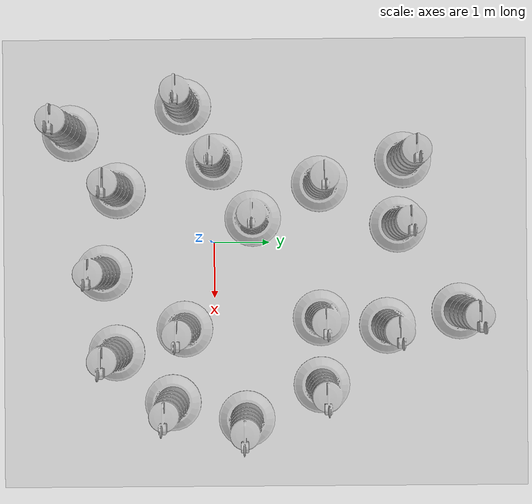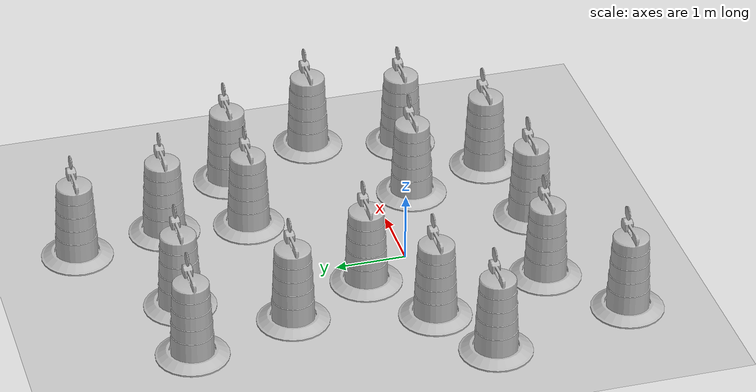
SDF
<sdf version="1.7">
 <world name="default">
  <light name="sun" type="directional">
   <pose>0 0 10 0 -0 0</pose>
   <diffuse>0.8 0.8 0.8 1</diffuse>
   <specular>0.2 0.2 0.2 1</specular>
   <attenuation>
    <range>1000</range>
    <constant>0.9</constant>
    <linear>0.01</linear>
    <quadratic>0.001</quadratic>
   </attenuation>
   <direction>-0.5 0.1 -0.9</direction>
   <spot><inner_angle>0</inner_angle><outer_angle>0</outer_angle><falloff>0</falloff></spot>
  </light>
  <model name="ground_plane">
   <static>1</static>
   <link name="link">
    <collision name="collision">
     <geometry><plane><normal>0 0 1</normal><size>100 100</size></plane></geometry>
     <surface>
      <contact><collide_bitmask>65535</collide_bitmask></contact>
      <friction><ode><mu>100</mu><mu2>50</mu2></ode></friction>
     </surface>
    </collision>
    <visual name="visual">
     <cast_shadows>0</cast_shadows>
     <geometry><plane><normal>0 0 1</normal><size>100 100</size></plane></geometry>
     <material>
      <script><uri>file://media/materials/scripts/gazebo.material</uri><name>Gazebo/Grey</name></script>
     </material>
    </visual>
   </link>
  </model>
  <gravity>0 0 -9.8</gravity>
  <magnetic_field>6e-06 2.3e-05 -4.2e-05</magnetic_field>
  <atmosphere type="adiabatic"/>
  <physics type="ode">
   <max_step_size>0.001</max_step_size>
   <real_time_factor>1</real_time_factor>
   <real_time_update_rate>1000</real_time_update_rate>
  </physics>
  <scene><ambient>0.4 0.4 0.4 1</ambient><background>0.7 0.7 0.7 1</background><shadows>1</shadows></scene>
  <audio><device>default</device></audio>
  <spherical_coordinates>
   <surface_model>EARTH_WGS84</surface_model>
   <latitude_deg>0</latitude_deg>
   <longitude_deg>0</longitude_deg>
   <elevation>0</elevation>
   <heading_deg>0</heading_deg>
  </spherical_coordinates>
  <model name="Construction Barrel">
   <link name="link">
    <inertial>
     <pose>0 0 0.4 0 -0 0</pose>
     <mass>500</mass>
     <inertia><ixx>51.2096</ixx><iyy>51.2096</iyy><izz>25</izz><ixy>0</ixy><ixz>0</ixz><iyz>0</iyz></inertia>
    </inertial>
    <collision name="collision">
     <geometry><mesh><uri>model://construction_barrel/meshes/construction_barrel.dae</uri></mesh></geometry>
    </collision>
    <visual name="visual">
     <geometry><mesh><uri>model://construction_barrel/meshes/construction_barrel.dae</uri></mesh></geometry>
    </visual>
   </link>
   <pose>-1.05787 1.90307 -5e-06 -9e-06 -9e-06 -1.3e-05</pose>
  </model>
  <model name="Construction Barrel_0">
   <link name="link">
    <inertial>
     <pose>0 0 0.4 0 -0 0</pose>
     <mass>500</mass>
     <inertia><ixx>51.2096</ixx><iyy>51.2096</iyy><izz>25</izz><ixy>0</ixy><ixz>0</ixz><iyz>0</iyz></inertia>
    </inertial>
    <collision name="collision">
     <geometry><mesh><uri>model://construction_barrel/meshes/construction_barrel.dae</uri></mesh></geometry>
    </collision>
    <visual name="visual">
     <geometry><mesh><uri>model://construction_barrel/meshes/construction_barrel.dae</uri></mesh></geometry>
    </visual>
   </link>
   <pose>2.58037 1.9282 -1e-06 0 5e-06 -1e-05</pose>
  </model>
  <model name="Construction Barrel_0_clone">
   <link name="link">
    <inertial>
     <pose>0 0 0.4 0 -0 0</pose>
     <mass>500</mass>
     <inertia><ixx>51.2096</ixx><iyy>51.2096</iyy><izz>25</izz><ixy>0</ixy><ixz>0</ixz><iyz>0</iyz></inertia>
    </inertial>
    <collision name="collision">
     <geometry><mesh><uri>model://construction_barrel/meshes/construction_barrel.dae</uri></mesh></geometry>
    </collision>
    <visual name="visual">
     <geometry><mesh><uri>model://construction_barrel/meshes/construction_barrel.dae</uri></mesh></geometry>
    </visual>
   </link>
   <pose>1.51451 3.12122 -4e-06 -5e-06 -7e-06 -9e-06</pose>
  </model>
  <model name="Construction Barrel_clone">
   <link name="link">
    <inertial>
     <pose>0 0 0.4 0 -0 0</pose>
     <mass>500</mass>
     <inertia><ixx>51.2096</ixx><iyy>51.2096</iyy><izz>25</izz><ixy>0</ixy><ixz>0</ixz><iyz>0</iyz></inertia>
    </inertial>
    <collision name="collision">
     <geometry><mesh><uri>model://construction_barrel/meshes/construction_barrel.dae</uri></mesh></geometry>
    </collision>
    <visual name="visual">
     <geometry><mesh><uri>model://construction_barrel/meshes/construction_barrel.dae</uri></mesh></geometry>
    </visual>
   </link>
   <pose>-1.48114 3.4154 0 2e-06 0 -1.3e-05</pose>
  </model>
  <model name="Construction Barrel_clone_0">
   <link name="link">
    <inertial>
     <pose>0 0 0.4 0 -0 0</pose>
     <mass>500</mass>
     <inertia><ixx>51.2096</ixx><iyy>51.2096</iyy><izz>25</izz><ixy>0</ixy><ixz>0</ixz><iyz>0</iyz></inertia>
    </inertial>
    <collision name="collision">
     <geometry><mesh><uri>model://construction_barrel/meshes/construction_barrel.dae</uri></mesh></geometry>
    </collision>
    <visual name="visual">
     <geometry><mesh><uri>model://construction_barrel/meshes/construction_barrel.dae</uri></mesh></geometry>
    </visual>
   </link>
   <pose>1.26058 4.43289 0 2e-06 0 -1.3e-05</pose>
  </model>
  <model name="Construction Barrel_clone_1">
   <link name="link">
    <inertial>
     <pose>0 0 0.4 0 -0 0</pose>
     <mass>500</mass>
     <inertia><ixx>51.2096</ixx><iyy>51.2096</iyy><izz>25</izz><ixy>0</ixy><ixz>0</ixz><iyz>0</iyz></inertia>
    </inertial>
    <collision name="collision">
     <geometry><mesh><uri>model://construction_barrel/meshes/construction_barrel.dae</uri></mesh></geometry>
    </collision>
    <visual name="visual">
     <geometry><mesh><uri>model://construction_barrel/meshes/construction_barrel.dae</uri></mesh></geometry>
    </visual>
   </link>
   <pose>-0.438868 0.694605 0 2e-06 0 -1.3e-05</pose>
  </model>
  <model name="Construction Barrel_clone_2">
   <link name="link">
    <inertial>
     <pose>0 0 0.4 0 -0 0</pose>
     <mass>500</mass>
     <inertia><ixx>51.2096</ixx><iyy>51.2096</iyy><izz>25</izz><ixy>0</ixy><ixz>0</ixz><iyz>0</iyz></inertia>
    </inertial>
    <collision name="collision">
     <geometry><mesh><uri>model://construction_barrel/meshes/construction_barrel.dae</uri></mesh></geometry>
    </collision>
    <visual name="visual">
     <geometry><mesh><uri>model://construction_barrel/meshes/construction_barrel.dae</uri></mesh></geometry>
    </visual>
   </link>
   <pose>3.18721 0.569614 0 2e-06 0 -1.3e-05</pose>
  </model>
  <model name="Construction Barrel_clone_3">
   <link name="link">
    <inertial>
     <pose>0 0 0.4 0 -0 0</pose>
     <mass>500</mass>
     <inertia><ixx>51.2096</ixx><iyy>51.2096</iyy><izz>25</izz><ixy>0</ixy><ixz>0</ixz><iyz>0</iyz></inertia>
    </inertial>
    <collision name="collision">
     <geometry><mesh><uri>model://construction_barrel/meshes/construction_barrel.dae</uri></mesh></geometry>
    </collision>
    <visual name="visual">
     <geometry><mesh><uri>model://construction_barrel/meshes/construction_barrel.dae</uri></mesh></geometry>
    </visual>
   </link>
   <pose>2.88599 -0.764902 0 2e-06 0 -1.3e-05</pose>
  </model>
  <model name="Construction Barrel_clone_4">
   <link name="link">
    <inertial>
     <pose>0 0 0.4 0 -0 0</pose>
     <mass>500</mass>
     <inertia><ixx>51.2096</ixx><iyy>51.2096</iyy><izz>25</izz><ixy>0</ixy><ixz>0</ixz><iyz>0</iyz></inertia>
    </inertial>
    <collision name="collision">
     <geometry><mesh><uri>model://construction_barrel/meshes/construction_barrel.dae</uri></mesh></geometry>
    </collision>
    <visual name="visual">
     <geometry><mesh><uri>model://construction_barrel/meshes/construction_barrel.dae</uri></mesh></geometry>
    </visual>
   </link>
   <pose>1.97864 -1.77925 0 2e-06 0 -1.3e-05</pose>
  </model>
  <model name="Construction Barrel_clone_5">
   <link name="link">
    <inertial>
     <pose>0 0 0.4 0 -0 0</pose>
     <mass>500</mass>
     <inertia><ixx>51.2096</ixx><iyy>51.2096</iyy><izz>25</izz><ixy>0</ixy><ixz>0</ixz><iyz>0</iyz></inertia>
    </inertial>
    <collision name="collision">
     <geometry><mesh><uri>model://construction_barrel/meshes/construction_barrel.dae</uri></mesh></geometry>
    </collision>
    <visual name="visual">
     <geometry><mesh><uri>model://construction_barrel/meshes/construction_barrel.dae</uri></mesh></geometry>
    </visual>
   </link>
   <pose>0.534675 -2 0 2e-06 0 -1.3e-05</pose>
  </model>
  <model name="Construction Barrel_clone_6">
   <link name="link">
    <inertial>
     <pose>0 0 0.4 0 -0 0</pose>
     <mass>500</mass>
     <inertia><ixx>51.2096</ixx><iyy>51.2096</iyy><izz>25</izz><ixy>0</ixy><ixz>0</ixz><iyz>0</iyz></inertia>
    </inertial>
    <collision name="collision">
     <geometry><mesh><uri>model://construction_barrel/meshes/construction_barrel.dae</uri></mesh></geometry>
    </collision>
    <visual name="visual">
     <geometry><mesh><uri>model://construction_barrel/meshes/construction_barrel.dae</uri></mesh></geometry>
    </visual>
   </link>
   <pose>-0.957001 -1.75137 0 2e-06 0 -1.3e-05</pose>
  </model>
  <model name="Construction Barrel_clone_7">
   <link name="link">
    <inertial>
     <pose>0 0 0.4 0 -0 0</pose>
     <mass>500</mass>
     <inertia><ixx>51.2096</ixx><iyy>51.2096</iyy><izz>25</izz><ixy>0</ixy><ixz>0</ixz><iyz>0</iyz></inertia>
    </inertial>
    <collision name="collision">
     <geometry><mesh><uri>model://construction_barrel/meshes/construction_barrel.dae</uri></mesh></geometry>
    </collision>
    <visual name="visual">
     <geometry><mesh><uri>model://construction_barrel/meshes/construction_barrel.dae</uri></mesh></geometry>
    </visual>
   </link>
   <pose>1.36858 1.92163 0 2e-06 0 -1.3e-05</pose>
  </model>
  <model name="Construction Barrel_clone_8">
   <link name="link">
    <inertial>
     <pose>0 0 0.4 0 -0 0</pose>
     <mass>500</mass>
     <inertia><ixx>51.2096</ixx><iyy>51.2096</iyy><izz>25</izz><ixy>0</ixy><ixz>0</ixz><iyz>0</iyz></inertia>
    </inertial>
    <collision name="collision">
     <geometry><mesh><uri>model://construction_barrel/meshes/construction_barrel.dae</uri></mesh></geometry>
    </collision>
    <visual name="visual">
     <geometry><mesh><uri>model://construction_barrel/meshes/construction_barrel.dae</uri></mesh></geometry>
    </visual>
   </link>
   <pose>-0.314406 3.31641 0 2e-06 0 -1.3e-05</pose>
  </model>
  <model name="Construction Barrel_clone_9">
   <link name="link">
    <inertial>
     <pose>0 0 0.4 0 -0 0</pose>
     <mass>500</mass>
     <inertia><ixx>51.2096</ixx><iyy>51.2096</iyy><izz>25</izz><ixy>0</ixy><ixz>0</ixz><iyz>0</iyz></inertia>
    </inertial>
    <collision name="collision">
     <geometry><mesh><uri>model://construction_barrel/meshes/construction_barrel.dae</uri></mesh></geometry>
    </collision>
    <visual name="visual">
     <geometry><mesh><uri>model://construction_barrel/meshes/construction_barrel.dae</uri></mesh></geometry>
    </visual>
   </link>
   <pose>1.55618 -0.546281 0 2e-06 0 -1.3e-05</pose>
  </model>
  <model name="Construction Barrel_clone_10">
   <link name="link">
    <inertial>
     <pose>0 0 0.4 0 -0 0</pose>
     <mass>500</mass>
     <inertia><ixx>51.2096</ixx><iyy>51.2096</iyy><izz>25</izz><ixy>0</ixy><ixz>0</ixz><iyz>0</iyz></inertia>
    </inertial>
    <collision name="collision">
     <geometry><mesh><uri>model://construction_barrel/meshes/construction_barrel.dae</uri></mesh></geometry>
    </collision>
    <visual name="visual">
     <geometry><mesh><uri>model://construction_barrel/meshes/construction_barrel.dae</uri></mesh></geometry>
    </visual>
   </link>
   <pose>-1.47004 0 0 2e-06 0 -1.3e-05</pose>
  </model>
  <model name="Construction Barrel_clone_11">
   <link name="link">
    <inertial>
     <pose>0 0 0.4 0 -0 0</pose>
     <mass>500</mass>
     <inertia><ixx>51.2096</ixx><iyy>51.2096</iyy><izz>25</izz><ixy>0</ixy><ixz>0</ixz><iyz>0</iyz></inertia>
    </inertial>
    <collision name="collision">
     <geometry><mesh><uri>model://construction_barrel/meshes/construction_barrel.dae</uri></mesh></geometry>
    </collision>
    <visual name="visual">
     <geometry><mesh><uri>model://construction_barrel/meshes/construction_barrel.dae</uri></mesh></geometry>
    </visual>
   </link>
   <pose>-2 -2.59728 0 2e-06 0 -1.3e-05</pose>
  </model>
  <model name="Construction Barrel_clone_12">
   <link name="link">
    <inertial>
     <pose>0 0 0.4 0 -0 0</pose>
     <mass>500</mass>
     <inertia><ixx>51.2096</ixx><iyy>51.2096</iyy><izz>25</izz><ixy>0</ixy><ixz>0</ixz><iyz>0</iyz></inertia>
    </inertial>
    <collision name="collision">
     <geometry><mesh><uri>model://construction_barrel/meshes/construction_barrel.dae</uri></mesh></geometry>
    </collision>
    <visual name="visual">
     <geometry><mesh><uri>model://construction_barrel/meshes/construction_barrel.dae</uri></mesh></geometry>
    </visual>
   </link>
   <pose>-2.46986 -0.555965 0 2e-06 0 -1.3e-05</pose>
  </model>
 </world>
</sdf>
